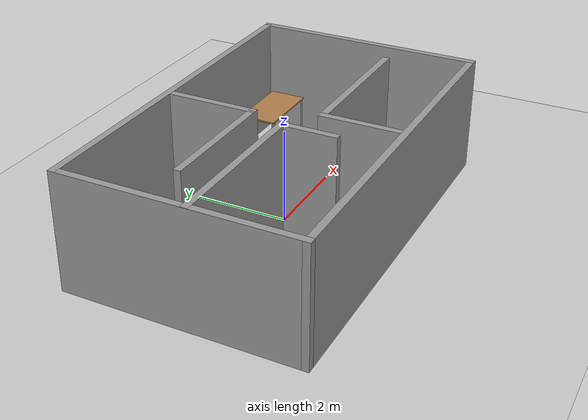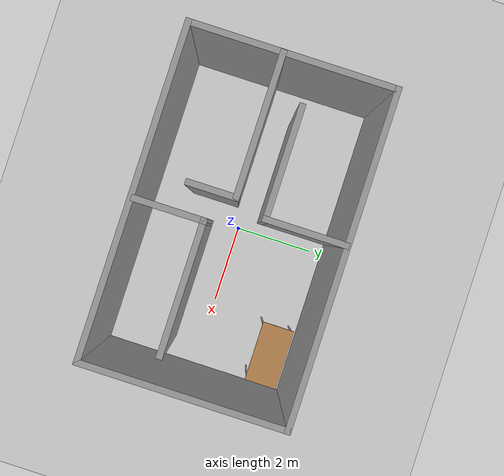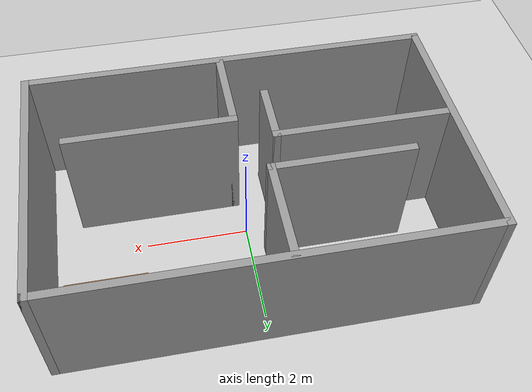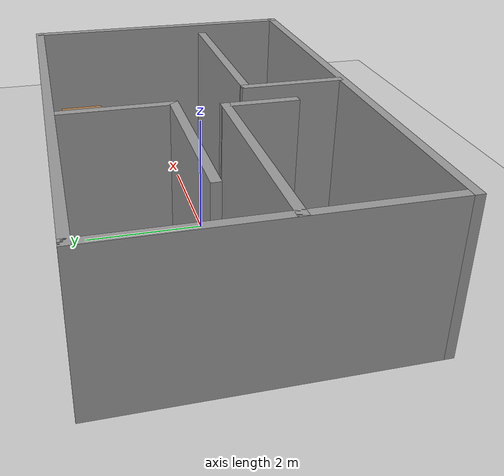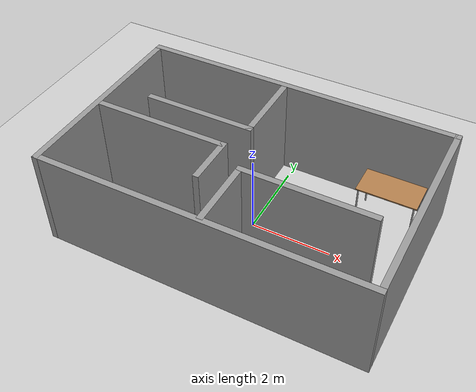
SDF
<sdf version="1.7">
 <world name="default">
  <light name="sun" type="directional">
   <pose>0 0 10 0 -0 0</pose>
   <diffuse>0.8 0.8 0.8 1</diffuse>
   <specular>0.2 0.2 0.2 1</specular>
   <attenuation>
    <range>1000</range>
    <constant>0.9</constant>
    <linear>0.01</linear>
    <quadratic>0.001</quadratic>
   </attenuation>
   <direction>-0.5 0.1 -0.9</direction>
   <spot><inner_angle>0</inner_angle><outer_angle>0</outer_angle><falloff>0</falloff></spot>
  </light>
  <model name="ground_plane">
   <static>1</static>
   <link name="link">
    <collision name="collision">
     <geometry><plane><normal>0 0 1</normal><size>100 100</size></plane></geometry>
     <surface><friction><ode><mu>100</mu><mu2>50</mu2></ode></friction></surface>
    </collision>
    <visual name="visual">
     <cast_shadows>0</cast_shadows>
     <geometry><plane><normal>0 0 1</normal><size>100 100</size></plane></geometry>
     <material>
      <script><uri>file://media/materials/scripts/gazebo.material</uri><name>Gazebo/Grey</name></script>
     </material>
    </visual>
   </link>
  </model>
  <gravity>0 0 -9.8</gravity>
  <magnetic_field>6e-06 2.3e-05 -4.2e-05</magnetic_field>
  <atmosphere type="adiabatic"/>
  <physics type="ode">
   <max_step_size>0.001</max_step_size>
   <real_time_factor>1</real_time_factor>
   <real_time_update_rate>1000</real_time_update_rate>
  </physics>
  <scene><ambient>0.4 0.4 0.4 1</ambient><background>0.7 0.7 0.7 1</background><shadows>1</shadows></scene>
  <audio><device>default</device></audio>
  <spherical_coordinates>
   <surface_model>EARTH_WGS84</surface_model>
   <latitude_deg>0</latitude_deg>
   <longitude_deg>0</longitude_deg>
   <elevation>0</elevation>
   <heading_deg>0</heading_deg>
  </spherical_coordinates>
  <model name="room">
   <pose>-0.043599 0.376221 0 0 -0 0</pose>
   <link name="Wall_0">
    <collision name="Wall_0_Collision">
     <geometry><box><size>8 0.15 2.5</size></box></geometry>
     <pose>0 0 1.25 0 -0 0</pose>
    </collision>
    <visual name="Wall_0_Visual">
     <pose>0 0 1.25 0 -0 0</pose>
     <geometry><box><size>8 0.15 2.5</size></box></geometry>
     <material>
      <script><uri>file://media/materials/scripts/gazebo.material</uri><name>Gazebo/Grey</name></script>
      <ambient>1 1 1 1</ambient>
     </material>
     <meta><layer>0</layer></meta>
    </visual>
    <pose>0 2.0175 0 0 -0 0</pose>
   </link>
   <link name="Wall_11">
    <collision name="Wall_11_Collision">
     <geometry><box><size>3.5 0.15 2.5</size></box></geometry>
     <pose>0 0 1.25 0 -0 0</pose>
    </collision>
    <visual name="Wall_11_Visual">
     <pose>0 0 1.25 0 -0 0</pose>
     <geometry><box><size>3.5 0.15 2.5</size></box></geometry>
     <material>
      <script><uri>file://media/materials/scripts/gazebo.material</uri><name>Gazebo/Grey</name></script>
      <ambient>1 1 1 1</ambient>
     </material>
     <meta><layer>0</layer></meta>
    </visual>
    <pose>-2.24 -0.6325 0 0 -0 0</pose>
   </link>
   <link name="Wall_12">
    <collision name="Wall_12_Collision">
     <geometry><box><size>1.25 0.15 2.5</size></box></geometry>
     <pose>0 0 1.25 0 -0 0</pose>
    </collision>
    <visual name="Wall_12_Visual">
     <pose>0 0 1.25 0 -0 0</pose>
     <geometry><box><size>1.25 0.15 2.5</size></box></geometry>
     <material>
      <script><uri>file://media/materials/scripts/gazebo.material</uri><name>Gazebo/Grey</name></script>
      <ambient>1 1 1 1</ambient>
     </material>
     <meta><layer>0</layer></meta>
    </visual>
    <pose>-0.565 -1.1825 0 0 -0 -1.5708</pose>
   </link>
   <link name="Wall_14">
    <collision name="Wall_14_Collision">
     <geometry><box><size>1.75 0.15 2.5</size></box></geometry>
     <pose>0 0 1.25 0 -0 0</pose>
    </collision>
    <visual name="Wall_14_Visual">
     <pose>0 0 1.25 0 -0 0</pose>
     <geometry><box><size>1.75 0.15 2.5</size></box></geometry>
     <material>
      <script><uri>file://media/materials/scripts/gazebo.material</uri><name>Gazebo/Grey</name></script>
      <ambient>1 1 1 1</ambient>
     </material>
     <meta><layer>0</layer></meta>
    </visual>
    <pose>0.135 -1.9525 0 0 -0 1.5708</pose>
   </link>
   <link name="Wall_15">
    <collision name="Wall_15_Collision">
     <geometry><box><size>3.25 0.15 2.5</size></box></geometry>
     <pose>0 0 1.25 0 -0 0</pose>
    </collision>
    <visual name="Wall_15_Visual">
     <pose>0 0 1.25 0 -0 0</pose>
     <geometry><box><size>3.25 0.15 2.5</size></box></geometry>
     <material>
      <script><uri>file://media/materials/scripts/gazebo.material</uri><name>Gazebo/Grey</name></script>
      <ambient>1 1 1 1</ambient>
     </material>
     <meta><layer>0</layer></meta>
    </visual>
    <pose>1.685 -1.1525 0 0 -0 0</pose>
   </link>
   <link name="Wall_2">
    <collision name="Wall_2_Collision">
     <geometry><box><size>5 0.15 2.5</size></box></geometry>
     <pose>0 0 1.25 0 -0 0</pose>
    </collision>
    <visual name="Wall_2_Visual">
     <pose>0 0 1.25 0 -0 0</pose>
     <geometry><box><size>5 0.15 2.5</size></box></geometry>
     <material>
      <script><uri>file://media/materials/scripts/gazebo.material</uri><name>Gazebo/Grey</name></script>
      <ambient>1 1 1 1</ambient>
     </material>
     <meta><layer>0</layer></meta>
    </visual>
    <pose>3.925 -0.4075 0 0 -0 -1.5708</pose>
   </link>
   <link name="Wall_3">
    <collision name="Wall_3_Collision">
     <geometry><box><size>8 0.15 2.5</size></box></geometry>
     <pose>0 0 1.25 0 -0 0</pose>
    </collision>
    <visual name="Wall_3_Visual">
     <pose>0 0 1.25 0 -0 0</pose>
     <geometry><box><size>8 0.15 2.5</size></box></geometry>
     <material>
      <script><uri>file://media/materials/scripts/gazebo.material</uri><name>Gazebo/Grey</name></script>
      <ambient>1 1 1 1</ambient>
     </material>
     <meta><layer>0</layer></meta>
    </visual>
    <pose>0 -2.8325 0 0 -0 3.14159</pose>
   </link>
   <link name="Wall_4">
    <collision name="Wall_4_Collision">
     <geometry><box><size>5 0.15 2.5</size></box></geometry>
     <pose>0 0 1.25 0 -0 0</pose>
    </collision>
    <visual name="Wall_4_Visual">
     <pose>0 0 1.25 0 -0 0</pose>
     <geometry><box><size>5 0.15 2.5</size></box></geometry>
     <material>
      <script><uri>file://media/materials/scripts/gazebo.material</uri><name>Gazebo/Grey</name></script>
      <ambient>1 1 1 1</ambient>
     </material>
     <meta><layer>0</layer></meta>
    </visual>
    <pose>-3.925 -0.4075 0 0 -0 1.5708</pose>
   </link>
   <link name="Wall_8">
    <collision name="Wall_8_Collision">
     <geometry><box><size>2 0.15 2.5</size></box></geometry>
     <pose>0 0 1.25 0 -0 0</pose>
    </collision>
    <visual name="Wall_8_Visual">
     <pose>0 0 1.25 0 -0 0</pose>
     <geometry><box><size>2 0.15 2.5</size></box></geometry>
     <material>
      <script><uri>file://media/materials/scripts/gazebo.material</uri><name>Gazebo/Grey</name></script>
      <ambient>1 1 1 1</ambient>
     </material>
     <meta><layer>0</layer></meta>
    </visual>
    <pose>-0.315 1.0525 0 0 -0 -1.5708</pose>
   </link>
   <link name="Wall_9">
    <collision name="Wall_9_Collision">
     <geometry><box><size>2.75 0.15 2.5</size></box></geometry>
     <pose>0 0 1.25 0 -0 0</pose>
    </collision>
    <visual name="Wall_9_Visual">
     <pose>0 0 1.25 0 -0 0</pose>
     <geometry><box><size>2.75 0.15 2.5</size></box></geometry>
     <material>
      <script><uri>file://media/materials/scripts/gazebo.material</uri><name>Gazebo/Grey</name></script>
      <ambient>1 1 1 1</ambient>
     </material>
     <meta><layer>0</layer></meta>
    </visual>
    <pose>-1.615 0.1275 0 0 -0 3.14159</pose>
   </link>
   <static>1</static>
  </model>
  <model name="table">
   <static>1</static>
   <link name="link">
    <collision name="surface">
     <pose>0 0 1 0 -0 0</pose>
     <geometry><box><size>1.5 0.8 0.03</size></box></geometry>
     <surface><friction><ode><mu>0.6</mu><mu2>0.6</mu2></ode></friction></surface>
    </collision>
    <visual name="visual1">
     <pose>0 0 1 0 -0 0</pose>
     <geometry><box><size>1.5 0.8 0.03</size></box></geometry>
     <material>
      <script><uri>file://media/materials/scripts/gazebo.material</uri><name>Gazebo/Wood</name></script>
     </material>
    </visual>
    <collision name="front_left_leg">
     <pose>0.68 0.38 0.5 0 -0 0</pose>
     <geometry><cylinder><radius>0.02</radius><length>1</length></cylinder></geometry>
    </collision>
    <visual name="front_left_leg">
     <pose>0.68 0.38 0.5 0 -0 0</pose>
     <geometry><cylinder><radius>0.02</radius><length>1</length></cylinder></geometry>
     <material>
      <script><uri>file://media/materials/scripts/gazebo.material</uri><name>Gazebo/Grey</name></script>
     </material>
    </visual>
    <collision name="front_right_leg">
     <pose>0.68 -0.38 0.5 0 -0 0</pose>
     <geometry><cylinder><radius>0.02</radius><length>1</length></cylinder></geometry>
    </collision>
    <visual name="front_right_leg">
     <pose>0.68 -0.38 0.5 0 -0 0</pose>
     <geometry><cylinder><radius>0.02</radius><length>1</length></cylinder></geometry>
     <material>
      <script><uri>file://media/materials/scripts/gazebo.material</uri><name>Gazebo/Grey</name></script>
     </material>
    </visual>
    <collision name="back_right_leg">
     <pose>-0.68 -0.38 0.5 0 -0 0</pose>
     <geometry><cylinder><radius>0.02</radius><length>1</length></cylinder></geometry>
    </collision>
    <visual name="back_right_leg">
     <pose>-0.68 -0.38 0.5 0 -0 0</pose>
     <geometry><cylinder><radius>0.02</radius><length>1</length></cylinder></geometry>
     <material>
      <script><uri>file://media/materials/scripts/gazebo.material</uri><name>Gazebo/Grey</name></script>
     </material>
    </visual>
    <collision name="back_left_leg">
     <pose>-0.68 0.38 0.5 0 -0 0</pose>
     <geometry><cylinder><radius>0.02</radius><length>1</length></cylinder></geometry>
    </collision>
    <visual name="back_left_leg">
     <pose>-0.68 0.38 0.5 0 -0 0</pose>
     <geometry><cylinder><radius>0.02</radius><length>1</length></cylinder></geometry>
     <material>
      <script><uri>file://media/materials/scripts/gazebo.material</uri><name>Gazebo/Grey</name></script>
     </material>
    </visual>
   </link>
   <pose>2.77644 1.70899 0 0 -0 0</pose>
  </model>
 </world>
</sdf>
